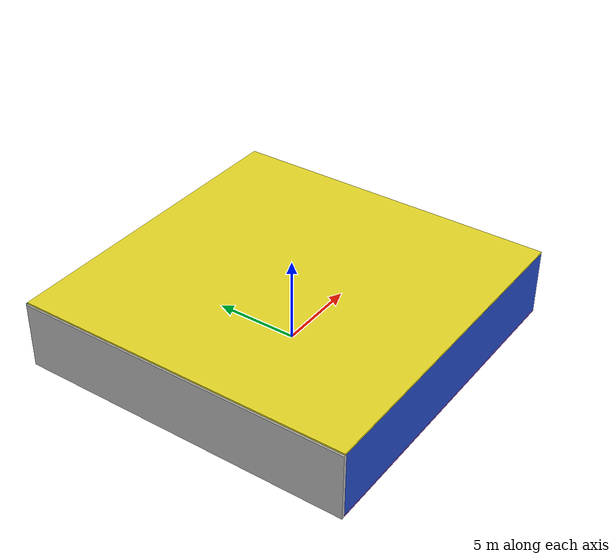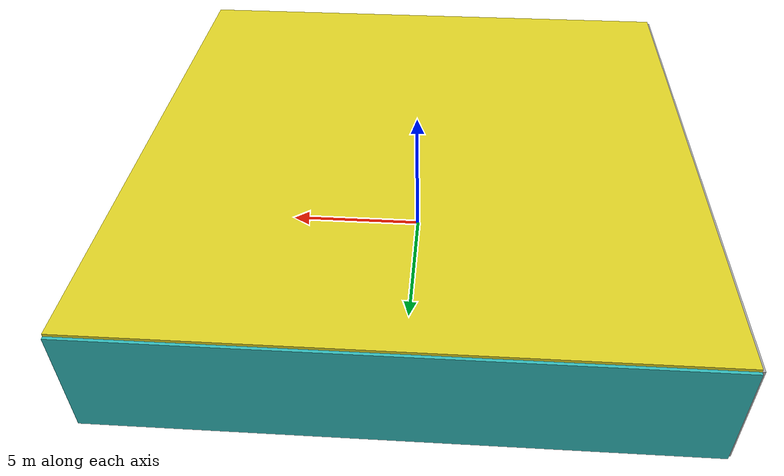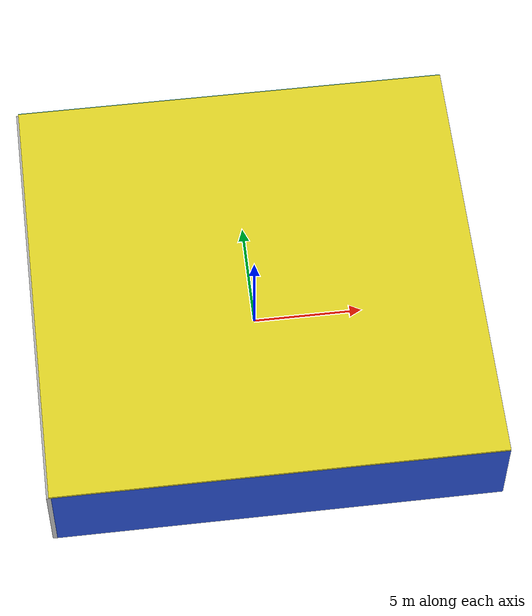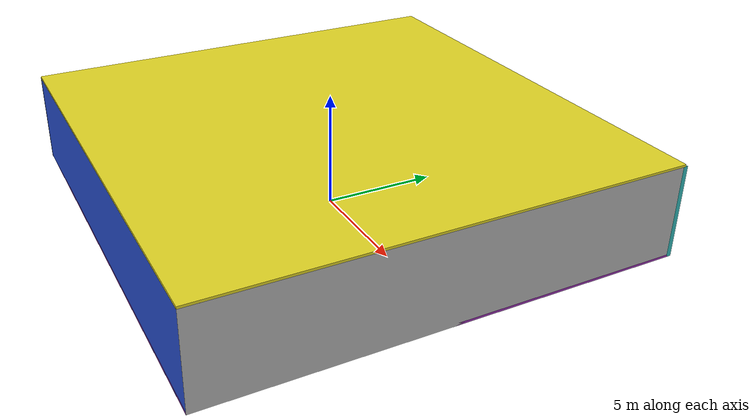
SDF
<sdf version="1.4">
 <world name="default">
  <physics type="ode">
   <max_step_size>0.001</max_step_size>
   <real_time_factor>1</real_time_factor>
   <real_time_update_rate>1000</real_time_update_rate>
   <gravity>0 0 -9.8</gravity>
  </physics>
  <scene><ambient>0.4 0.4 0.4 1</ambient><background>0.7 0.7 0.7 1</background><shadows>1</shadows></scene>
  <model name="Surrounding">
   <static>1</static>
   <link name="Ceiling">
    <collision name="Ceiling_Collision"><geometry><box><size>20 20 0.1</size></box></geometry></collision>
    <visual name="Ceiling_Visual">
     <geometry><box><size>20 20 0.1</size></box></geometry>
     <material>
      <script><uri>file://media/materials/scripts/gazebo.material</uri><name>Gazebo/YellowGlow</name></script>
     </material>
    </visual>
    <pose>0 0 4.05 0 0 0</pose>
   </link>
   <link name="Wall_South">
    <collision name="Wall_South_Collision">
     <geometry><box><size>20 0 4</size></box></geometry>
     <pose>0 0 2 0 -0 0</pose>
    </collision>
    <visual name="Wall_South_Visual">
     <pose>0 0 2 0 -0 0</pose>
     <geometry><box><size>20 0 4</size></box></geometry>
     <material>
      <script><uri>file://media/materials/scripts/gazebo.material</uri><name>Gazebo/BlueLaser</name></script>
     </material>
    </visual>
    <velocity_decay><linear>0</linear><angular>0</angular></velocity_decay>
    <pose>0 -10 0 0 -0 0</pose>
   </link>
   <link name="Wall_East">
    <collision name="Wall_21_Collision">
     <geometry><box><size>20 0 4</size></box></geometry>
     <pose>0 0 2 0 -0 0</pose>
    </collision>
    <visual name="Wall_21_Visual">
     <pose>0 0 2 0 -0 0</pose>
     <geometry><box><size>20 0 4</size></box></geometry>
     <material>
      <script><uri>file://media/materials/scripts/gazebo.material</uri><name>Gazebo/PioneerBody</name></script>
     </material>
    </visual>
    <velocity_decay><linear>0</linear><angular>0</angular></velocity_decay>
    <pose>10 0 0 0 -0 1.5708</pose>
   </link>
   <link name="Wall_North">
    <collision name="Wall_22_Collision">
     <geometry><box><size>20 0.2 4</size></box></geometry>
     <pose>0 0 2 0 -0 0</pose>
    </collision>
    <visual name="Wall_22_Visual">
     <pose>0 0 2 0 -0 0</pose>
     <geometry><box><size>20 0.2 4</size></box></geometry>
     <material>
      <script><uri>file://media/materials/scripts/gazebo.material</uri><name>Gazebo/Turquoise</name></script>
     </material>
    </visual>
    <velocity_decay><linear>0</linear><angular>0</angular></velocity_decay>
    <pose>0 10 0 0 -0 0</pose>
   </link>
   <link name="Wall_West">
    <collision name="Wall_23_Collision">
     <geometry><box><size>20 0.2 4</size></box></geometry>
     <pose>0 0 2 0 -0 0</pose>
    </collision>
    <visual name="Wall_23_Visual">
     <pose>0 0 2 0 -0 0</pose>
     <geometry><box><size>20 0.2 4</size></box></geometry>
     <material>
      <script><uri>file://media/materials/scripts/gazebo.material</uri><name>Gazebo/Pioneer2Body</name></script>
     </material>
    </visual>
    <velocity_decay><linear>0</linear><angular>0</angular></velocity_decay>
    <pose>-10 0 0 0 0 -1.5708</pose>
   </link>
   <link name="Ground_link">
    <collision name="collision">
     <pose>0 0 .05 0 -0 0</pose>
     <geometry><box><size>20 20 0.1</size></box></geometry>
    </collision>
    <visual name="visual">
     <pose>0 0 .05 0 -0 0</pose>
     <geometry><box><size>20 20 0.1</size></box></geometry>
     <material>
      <script><uri>file://media/materials/scripts/gazebo.material</uri><name>Gazebo/Purple</name></script>
     </material>
    </visual>
   </link>
   <static>1</static>
  </model>
  <spherical_coordinates>
   <surface_model>EARTH_WGS84</surface_model>
   <latitude_deg>0</latitude_deg>
   <longitude_deg>0</longitude_deg>
   <elevation>0</elevation>
   <heading_deg>0</heading_deg>
  </spherical_coordinates>
  <light name="lightball_0" type="diffuse">
   <diffuse>0.8 0.8 0.8 1</diffuse>
   <specular>0.2 0.2 0.2 1</specular>
   <attenuation>
    <range>100</range>
    <constant>0.7</constant>
    <linear>0.01</linear>
    <quadratic>0.001</quadratic>
   </attenuation>
   <direction>-0.5 0.1 -0.9</direction>
   <pose>-4.23341866692 6.7918783299 3.62417118951 0 0 0</pose>
  </light>
  <light name="lightball_1" type="diffuse">
   <diffuse>0.8 0.8 0.8 1</diffuse>
   <specular>0.2 0.2 0.2 1</specular>
   <attenuation>
    <range>100</range>
    <constant>0.7</constant>
    <linear>0.01</linear>
    <quadratic>0.001</quadratic>
   </attenuation>
   <direction>-0.5 0.1 -0.9</direction>
   <pose>8.82321398929 6.47733236851 2.42976616292 0 0 0</pose>
  </light>
  <light name="lightball_2" type="diffuse">
   <diffuse>0.8 0.8 0.8 1</diffuse>
   <specular>0.2 0.2 0.2 1</specular>
   <attenuation>
    <range>100</range>
    <constant>0.7</constant>
    <linear>0.01</linear>
    <quadratic>0.001</quadratic>
   </attenuation>
   <direction>-0.5 0.1 -0.9</direction>
   <pose>-1.21874626459 2.69058816574 1.16890691506 0 0 0</pose>
  </light>
  <light name="lightball_3" type="diffuse">
   <diffuse>0.8 0.8 0.8 1</diffuse>
   <specular>0.2 0.2 0.2 1</specular>
   <attenuation>
    <range>100</range>
    <constant>0.7</constant>
    <linear>0.01</linear>
    <quadratic>0.001</quadratic>
   </attenuation>
   <direction>-0.5 0.1 -0.9</direction>
   <pose>9.34937545772 0.373186621572 2.11320572645 0 0 0</pose>
  </light>
  <light name="lightball_4" type="diffuse">
   <diffuse>0.8 0.8 0.8 1</diffuse>
   <specular>0.2 0.2 0.2 1</specular>
   <attenuation>
    <range>100</range>
    <constant>0.7</constant>
    <linear>0.01</linear>
    <quadratic>0.001</quadratic>
   </attenuation>
   <direction>-0.5 0.1 -0.9</direction>
   <pose>-9.56233549494 -3.92671370147 2.68150445827 0 0 0</pose>
  </light>
  <light name="lightball_5" type="diffuse">
   <diffuse>0.8 0.8 0.8 1</diffuse>
   <specular>0.2 0.2 0.2 1</specular>
   <attenuation>
    <range>100</range>
    <constant>0.7</constant>
    <linear>0.01</linear>
    <quadratic>0.001</quadratic>
   </attenuation>
   <direction>-0.5 0.1 -0.9</direction>
   <pose>-3.89075056002 -7.81371473031 3.01230523642 0 0 0</pose>
  </light>
  <light name="lightball_6" type="diffuse">
   <diffuse>0.8 0.8 0.8 1</diffuse>
   <specular>0.2 0.2 0.2 1</specular>
   <attenuation>
    <range>100</range>
    <constant>0.7</constant>
    <linear>0.01</linear>
    <quadratic>0.001</quadratic>
   </attenuation>
   <direction>-0.5 0.1 -0.9</direction>
   <pose>-6.64464460341 -2.7541368176 1.58723065411 0 0 0</pose>
  </light>
  <light name="lightball_7" type="diffuse">
   <diffuse>0.8 0.8 0.8 1</diffuse>
   <specular>0.2 0.2 0.2 1</specular>
   <attenuation>
    <range>100</range>
    <constant>0.7</constant>
    <linear>0.01</linear>
    <quadratic>0.001</quadratic>
   </attenuation>
   <direction>-0.5 0.1 -0.9</direction>
   <pose>-9.82397159014 -0.40265729628 3.618917682 0 0 0</pose>
  </light>
  <include>
   <uri>model://robocup_3Dsim_goal</uri>
   <pose>-8.03584899756 -3.3761238447 0 0 0 1.49482616041</pose>
  </include>
  <include><uri>model://cabinet</uri><pose>-4.49488251296 -5.0471510134 0 0 0 2.24502052029</pose></include>
  <include><uri>model://cabinet</uri><pose>1.55344370677 2.26714909007 0 0 0 2.72825112768</pose></include>
  <include><uri>model://cabinet</uri><pose>3.35711757669 -3.42044859784 0 0 0 2.9510290198</pose></include>
 </world>
</sdf>

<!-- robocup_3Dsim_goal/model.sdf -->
<sdf version="1.5">
  <model name="robocup_3d_goal">
    <static>true</static>
    <link name="left_post">
      <pose>0 1.05 0.45 0 0 0</pose>
      <collision name="collision">
        <geometry>
          <cylinder>
            <radius>0.05</radius>
            <length>0.9</length>
          </cylinder>
        </geometry>
      </collision>
      <visual name="visual">
        <geometry>
          <cylinder>
            <radius>0.05</radius>
            <length>0.9</length>
          </cylinder>
        </geometry>
        <material>
          <script>
            <uri>file://media/materials/scripts/gazebo.material</uri>
            <name>Gazebo/ZincYellow</name>
          </script>
        </material>
      </visual>
    </link>
    <link name="left_support_horiz_lower">
      <pose>0.30 1.05 0.01 0 0 0</pose>
      <collision name="collision">
        <geometry>
          <box>
            <size>0.50 0.02 0.02</size>
          </box>
        </geometry>
      </collision>
      <visual name="visual">
        <geometry>
          <box>
            <size>0.50 0.02 0.02</size>
          </box>
        </geometry>
        <material>
          <script>
            <uri>file://media/materials/scripts/gazebo.material</uri>
            <name>Gazebo/White</name>
          </script>
        </material>
      </visual>
    </link>
    <link name="left_support_horiz_upper">
      <pose>0.30 1.05 0.79 0 0 0</pose>
      <collision name="collision">
        <geometry>
          <box>
            <size>0.50 0.02 0.02</size>
          </box>
        </geometry>
      </collision>
      <visual name="visual">
        <geometry>
          <box>
            <size>0.50 0.02 0.02</size>
          </box>
        </geometry>
        <material>
          <script>
            <uri>file://media/materials/scripts/gazebo.material</uri>
            <name>Gazebo/White</name>
          </script>
        </material>
      </visual>
    </link>
    <link name="left_support_vertical">
      <pose>0.56 1.05 0.4 0 1.5708 0</pose>
      <collision name="collision">
        <geometry>
          <box>
            <size>0.80 0.02 0.02</size>
          </box>
        </geometry>
      </collision>
      <visual name="visual">
        <geometry>
          <box>
            <size>0.80 0.02 0.02</size>
          </box>
        </geometry>
        <material>
          <script>
            <uri>file://media/materials/scripts/gazebo.material</uri>
            <name>Gazebo/White</name>
          </script>
        </material>
      </visual>
    </link>
    <link name="right_support_horiz_lower">
      <pose>0.30 -1.05 0.01 0 0 0</pose>
      <collision name="collision">
        <geometry>
          <box>
            <size>0.50 0.02 0.02</size>
          </box>
        </geometry>
      </collision>
      <visual name="visual">
        <geometry>
          <box>
            <size>0.50 0.02 0.02</size>
          </box>
        </geometry>
        <material>
          <script>
            <uri>file://media/materials/scripts/gazebo.material</uri>
            <name>Gazebo/White</name>
          </script>
        </material>
      </visual>
    </link>
    <link name="right_support_horiz_upper">
      <pose>0.30 -1.05 0.79 0 0 0</pose>
      <collision name="collision">
        <geometry>
          <box>
            <size>0.50 0.02 0.02</size>
          </box>
        </geometry>
      </collision>
      <visual name="visual">
        <geometry>
          <box>
            <size>0.50 0.02 0.02</size>
          </box>
        </geometry>
        <material>
          <script>
            <uri>file://media/materials/scripts/gazebo.material</uri>
            <name>Gazebo/White</name>
          </script>
        </material>
      </visual>
    </link>
    <link name="right_support_vertical">
      <pose>0.56 -1.05 0.4 0 1.5708 0</pose>
      <collision name="collision">
        <geometry>
          <box>
            <size>0.80 0.02 0.02</size>
          </box>
        </geometry>
      </collision>
      <visual name="visual">
        <geometry>
          <box>
            <size>0.80 0.02 0.02</size>
          </box>
        </geometry>
        <material>
          <script>
            <uri>file://media/materials/scripts/gazebo.material</uri>
            <name>Gazebo/White</name>
          </script>
        </material>
      </visual>
    </link>
    <link name="center_support_horiz_lower">
      <pose>0.56 0 0.01 0 1.5708 0</pose>
      <collision name="collision">
        <geometry>
          <box>
            <size>0.02 2.08 0.02</size>
          </box>
        </geometry>
      </collision>
      <visual name="visual">
        <geometry>
          <box>
            <size>0.02 2.08 0.02</size>
          </box>
        </geometry>
        <material>
          <script>
            <uri>file://media/materials/scripts/gazebo.material</uri>
            <name>Gazebo/White</name>
          </script>
        </material>
      </visual>
    </link>
    <link name="center_support_horiz_upper">
      <pose>0.56 0 0.79 0 1.5708 0</pose>
      <collision name="collision">
        <geometry>
          <box>
            <size>0.02 2.08 0.02</size>
          </box>
        </geometry>
      </collision>
      <visual name="visual">
        <geometry>
          <box>
            <size>0.02 2.08 0.02</size>
          </box>
        </geometry>
        <material>
          <script>
            <uri>file://media/materials/scripts/gazebo.material</uri>
            <name>Gazebo/White</name>
          </script>
        </material>
      </visual>
    </link>
    <link name="right_post">
      <pose>0 -1.05 0.45 0 0 0</pose>
      <collision name="collision">
        <geometry>
          <cylinder>
            <radius>0.05</radius>
            <length>0.9</length>
          </cylinder>
        </geometry>
      </collision>
      <visual name="visual">
        <geometry>
          <cylinder>
            <radius>0.05</radius>
            <length>0.9</length>
          </cylinder>
        </geometry>
        <material>
          <script>
            <uri>file://media/materials/scripts/gazebo.material</uri>
            <name>Gazebo/ZincYellow</name>
          </script>
        </material>
      </visual>
    </link>
    <link name="crossbar">
      <pose>0 0 0.85 1.57 1.57 0</pose>
      <collision name="collision">
        <geometry>
          <cylinder>
            <radius>0.05</radius>
            <length>2.0</length>
          </cylinder>
        </geometry>
      </collision>
      <visual name="visual">
        <geometry>
          <cylinder>
            <radius>0.05</radius>
            <length>2.0</length>
          </cylinder>
        </geometry>
        <material>
          <script>
            <uri>file://media/materials/scripts/gazebo.material</uri>
            <name>Gazebo/ZincYellow</name>
          </script>
        </material>
      </visual>
    </link>
    <link name="center_net">
      <pose>0.56 0 0.40 0 0 0</pose>
      <collision name="collision">
        <geometry>
          <box>
            <size>0.01 2.1 0.80</size>
          </box>
        </geometry>
      </collision>
      <visual name="visual">
        <geometry>
          <box>
            <size>0.01 2.1 0.80</size>
          </box>
        </geometry>
        <material>
          <script>
            <uri>model://../model_source/models/robocup09_spl_field/materials/scripts/</uri>
            <uri>model://../model_source/models/robocup09_spl_field/materials/textures/</uri>
            <name>RoboCup/Net</name>
          </script>
        </material>
      </visual>
    </link>
    <link name="left_net">
      <pose>0.30 1.05 0.40 0 0 0</pose>
      <collision name="collision">
        <geometry>
          <box>
            <size>0.50 0.01 0.76</size>
          </box>
        </geometry>
      </collision>
      <visual name="visual">
        <geometry>
          <box>
            <size>0.50 0.01 0.76</size>
          </box>
        </geometry>
        <material>
          <script>
            <uri>model://../model_source/models/robocup09_spl_field/materials/scripts/</uri>
            <uri>model://../model_source/models/robocup09_spl_field/materials/textures/</uri>
            <name>RoboCup/Net</name>
          </script>
        </material>
      </visual>
    </link>
    <link name="right_net">
      <pose>0.30 -1.05 0.40 0 0 0</pose>
      <collision name="collision">
        <geometry>
          <box>
            <size>0.50 0.01 0.76</size>
          </box>
        </geometry>
      </collision>
      <visual name="visual">
        <geometry>
          <box>
            <size>0.50 0.01 0.76</size>
          </box>
        </geometry>
        <material>
          <script>
            <uri>model://../model_source/models/robocup09_spl_field/materials/scripts/</uri>
            <uri>model://../model_source/models/robocup09_spl_field/materials/textures/</uri>
            <name>RoboCup/Net</name>
          </script>
        </material>
      </visual>
    </link>
  </model>
</sdf>

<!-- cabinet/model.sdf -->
<sdf version="1.5">
  <model name="cabinet">
    <static>true</static>
    <link name="cabinet_bottom_plate">
      <inertial>
        <pose>0 0 -1 0 0 0</pose>
        <inertia>
          <ixx>2.050000</ixx>
          <ixy>0</ixy>
          <ixz>0</ixz>
          <iyy>2.050000</iyy>
          <iyz>0</iyz>
          <izz>2.050000</izz>
        </inertia>
        <mass>25.000000</mass>
      </inertial>
      <collision name="cabinet_bottom_plate_geom">
        <pose>0 0 0.010000 0 0 0</pose>
        <geometry>
          <box>
            <size>0.450000 0.450000 0.020000</size>
          </box>
        </geometry>
      </collision>
      <visual name="cabinet_bottom_plate_geom_visual">
        <pose>0 0 0.010000 0 0 0</pose>
        <geometry>
          <box>
            <size>0.450000 0.450000 0.020000</size>
          </box>
        </geometry>
        <material>
          <script>
            <uri>model://media/materials/scripts/gazebo.material</uri>
            <name>Gazebo/Wood</name>
          </script>
        </material>
      </visual>
      <collision name="cabinet_bottom_plate_geom_cabinet_back_plate">
        <pose>0.235000 0 0.510000 0 0 0</pose>
        <geometry>
          <box>
            <size>0.020000 0.450000 1.020000</size>
          </box>
        </geometry>
      </collision>
      <visual name="cabinet_bottom_plate_geom_cabinet_back_plate_visual">
        <pose>0.235000 0 0.510000 0 0 0</pose>
        <geometry>
          <box>
            <size>0.020000 0.450000 1.020000</size>
          </box>
        </geometry>
        <material>
          <script>
            <uri>model://media/materials/scripts/gazebo.material</uri>
            <name>Gazebo/Wood</name>
          </script>
        </material>
      </visual>
      <collision name="cabinet_bottom_plate_geom_cabinet_left_plate">
        <pose>0 0.235000 0.510000 0 0 0</pose>
        <geometry>
          <box>
            <size>0.450000 0.020000 1.020000</size>
          </box>
        </geometry>
      </collision>
      <visual name="cabinet_bottom_plate_geom_cabinet_left_plate_visual">
        <pose>0 0.235000 0.510000 0 0 0</pose>
        <geometry>
          <box>
            <size>0.450000 0.020000 1.020000</size>
          </box>
        </geometry>
        <material>
          <script>
            <uri>model://media/materials/scripts/gazebo.material</uri>
            <name>Gazebo/Wood</name>
          </script>
        </material>
      </visual>
      <collision name="cabinet_bottom_plate_geom_cabinet_middle_plate">
        <pose>0 0 0.510000 0 0 0</pose>
        <geometry>
          <box>
            <size>0.450000 0.450000 0.020000</size>
          </box>
        </geometry>
      </collision>
      <visual name="cabinet_bottom_plate_geom_cabinet_middle_plate_visual">
        <pose>0 0 0.510000 0 0 0</pose>
        <geometry>
          <box>
            <size>0.450000 0.450000 0.020000</size>
          </box>
        </geometry>
        <material>
          <script>
            <uri>model://media/materials/scripts/gazebo.material</uri>
            <name>Gazebo/Wood</name>
          </script>
        </material>
      </visual>
      <collision name="cabinet_bottom_plate_geom_cabinet_right_plate">
        <pose>0 -0.235000 0.510000 0 0 0</pose>
        <geometry>
          <box>
            <size>0.450000 0.020000 1.020000</size>
          </box>
        </geometry>
      </collision>
      <visual name="cabinet_bottom_plate_geom_cabinet_right_plate_visual">
        <pose>0 -0.235000 0.510000 0 0 0</pose>
        <geometry>
          <box>
            <size>0.450000 0.020000 1.020000</size>
          </box>
        </geometry>
        <material>
          <script>
            <uri>model://media/materials/scripts/gazebo.material</uri>
            <name>Gazebo/Wood</name>
          </script>
        </material>
      </visual>
      <collision name="cabinet_bottom_plate_geom_cabinet_top_plate">
        <pose>0 0 1.010000 0 0 0</pose>
        <geometry>
          <box>
            <size>0.450000 0.450000 0.020000</size>
          </box>
        </geometry>
      </collision>
      <visual name="cabinet_bottom_plate_geom_cabinet_top_plate_visual">
        <pose>0 0 1.010000 0 0 0</pose>
        <geometry>
          <box>
            <size>0.450000 0.450000 0.020000</size>
          </box>
        </geometry>
        <material>
          <script>
            <uri>model://media/materials/scripts/gazebo.material</uri>
            <name>Gazebo/Wood</name>
          </script>
        </material>
      </visual>
    </link>
  </model>
</sdf>
